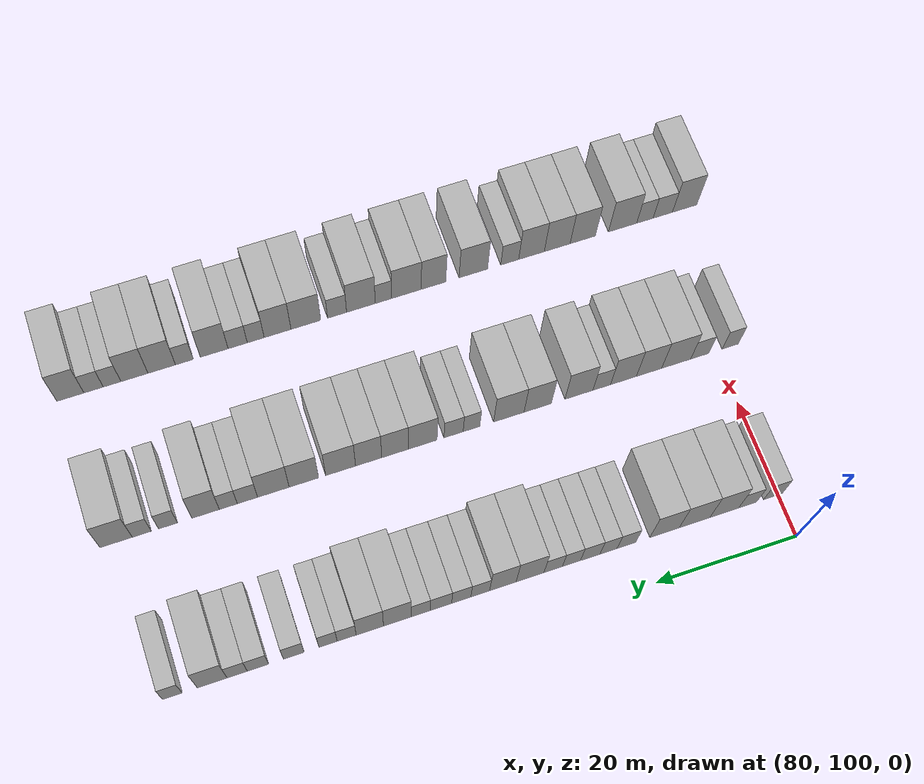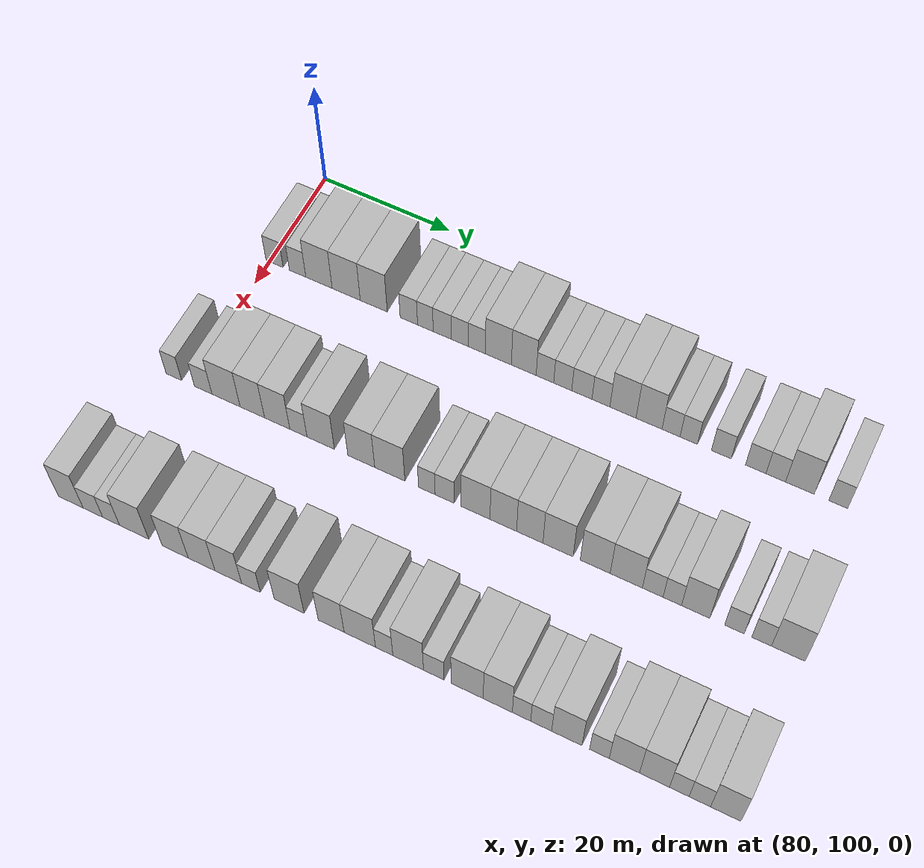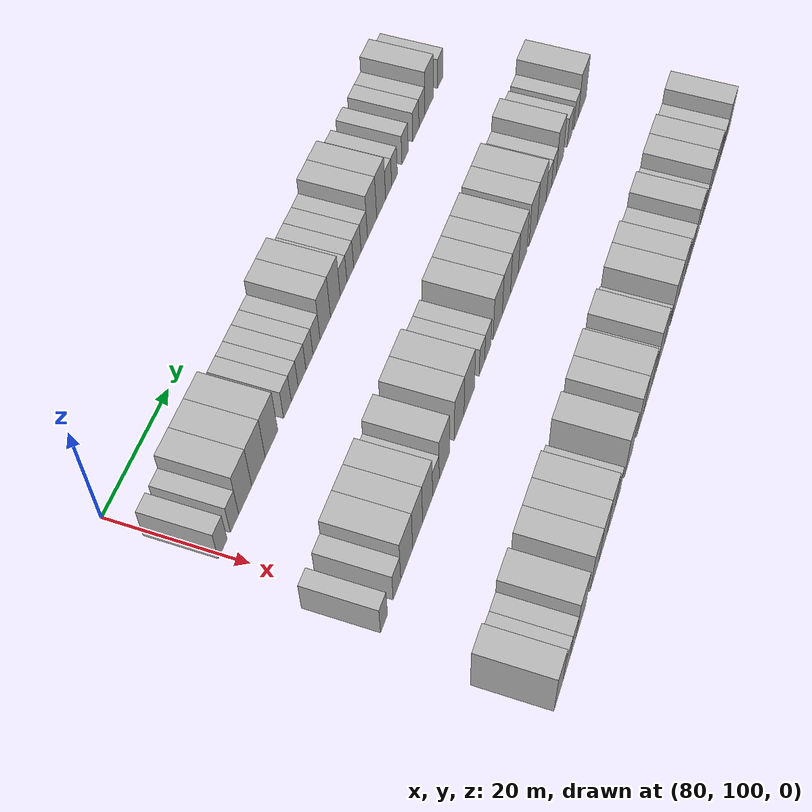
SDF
<sdf version="1.6">
 <world name="default">
  <model name="building_708">
   <static>1</static>
   <pose>91.0000 100.7744 0 0.000000 0.000000 0.000000</pose>
   <link name="link">
    <pose>0 0 3.00 0 0 0</pose>
    <collision name="collision"><geometry><box><size>10.0000 2.7549 6.0000</size></box></geometry></collision>
    <visual name="visual">
     <cast_shadows>0</cast_shadows>
     <geometry><box><size>10.0000 2.7549 6.0000</size></box></geometry>
     <material>
      <script>
       <uri>model://HANNAS_wall/materials/scripts</uri>
       <uri>model://HANNAS_wall/materials/textures</uri>
       <name>vrc/HANNAS_wall</name>
      </script>
     </material>
    </visual>
   </link>
  </model>
  <model name="building_709">
   <static>1</static>
   <pose>91.0000 104.4603 0 0.000000 0.000000 0.000000</pose>
   <link name="link">
    <pose>0 0 3.00 0 0 0</pose>
    <collision name="collision"><geometry><box><size>10.0000 2.6169 6.0000</size></box></geometry></collision>
    <visual name="visual">
     <cast_shadows>0</cast_shadows>
     <geometry><box><size>10.0000 2.6169 6.0000</size></box></geometry>
     <material>
      <script>
       <uri>model://HANNAS_wall/materials/scripts</uri>
       <uri>model://HANNAS_wall/materials/textures</uri>
       <name>vrc/HANNAS_wall</name>
      </script>
     </material>
    </visual>
   </link>
  </model>
  <model name="building_710">
   <static>1</static>
   <pose>91.0000 107.8591 0 0.000000 0.000000 0.000000</pose>
   <link name="link">
    <pose>0 0 4.50 0 0 0</pose>
    <collision name="collision"><geometry><box><size>10.0000 4.1806 9.0000</size></box></geometry></collision>
    <visual name="visual">
     <cast_shadows>0</cast_shadows>
     <geometry><box><size>10.0000 4.1806 9.0000</size></box></geometry>
     <material>
      <script>
       <uri>model://HANNAS_wall/materials/scripts</uri>
       <uri>model://HANNAS_wall/materials/textures</uri>
       <name>vrc/HANNAS_wall</name>
      </script>
     </material>
    </visual>
   </link>
  </model>
  <model name="building_711">
   <static>1</static>
   <pose>91.0000 112.1567 0 0.000000 0.000000 0.000000</pose>
   <link name="link">
    <pose>0 0 4.50 0 0 0</pose>
    <collision name="collision"><geometry><box><size>10.0000 4.4147 9.0000</size></box></geometry></collision>
    <visual name="visual">
     <cast_shadows>0</cast_shadows>
     <geometry><box><size>10.0000 4.4147 9.0000</size></box></geometry>
     <material>
      <script>
       <uri>model://HANNAS_wall/materials/scripts</uri>
       <uri>model://HANNAS_wall/materials/textures</uri>
       <name>vrc/HANNAS_wall</name>
      </script>
     </material>
    </visual>
   </link>
  </model>
  <model name="building_712">
   <static>1</static>
   <pose>91.0000 116.4764 0 0.000000 0.000000 0.000000</pose>
   <link name="link">
    <pose>0 0 4.50 0 0 0</pose>
    <collision name="collision"><geometry><box><size>10.0000 4.2247 9.0000</size></box></geometry></collision>
    <visual name="visual">
     <cast_shadows>0</cast_shadows>
     <geometry><box><size>10.0000 4.2247 9.0000</size></box></geometry>
     <material>
      <script>
       <uri>model://HANNAS_wall/materials/scripts</uri>
       <uri>model://HANNAS_wall/materials/textures</uri>
       <name>vrc/HANNAS_wall</name>
      </script>
     </material>
    </visual>
   </link>
  </model>
  <model name="building_713">
   <static>1</static>
   <pose>91.0000 121.9339 0 0.000000 0.000000 0.000000</pose>
   <link name="link">
    <pose>0 0 3.00 0 0 0</pose>
    <collision name="collision"><geometry><box><size>10.0000 2.6903 6.0000</size></box></geometry></collision>
    <visual name="visual">
     <cast_shadows>0</cast_shadows>
     <geometry><box><size>10.0000 2.6903 6.0000</size></box></geometry>
     <material>
      <script>
       <uri>model://HANNAS_wall/materials/scripts</uri>
       <uri>model://HANNAS_wall/materials/textures</uri>
       <name>vrc/HANNAS_wall</name>
      </script>
     </material>
    </visual>
   </link>
  </model>
  <model name="building_714">
   <static>1</static>
   <pose>91.0000 124.4852 0 0.000000 0.000000 0.000000</pose>
   <link name="link">
    <pose>0 0 3.00 0 0 0</pose>
    <collision name="collision"><geometry><box><size>10.0000 2.4123 6.0000</size></box></geometry></collision>
    <visual name="visual">
     <cast_shadows>0</cast_shadows>
     <geometry><box><size>10.0000 2.4123 6.0000</size></box></geometry>
     <material>
      <script>
       <uri>model://HANNAS_wall/materials/scripts</uri>
       <uri>model://HANNAS_wall/materials/textures</uri>
       <name>vrc/HANNAS_wall</name>
      </script>
     </material>
    </visual>
   </link>
  </model>
  <model name="building_715">
   <static>1</static>
   <pose>91.0000 127.0822 0 0.000000 0.000000 0.000000</pose>
   <link name="link">
    <pose>0 0 3.00 0 0 0</pose>
    <collision name="collision"><geometry><box><size>10.0000 2.7817 6.0000</size></box></geometry></collision>
    <visual name="visual">
     <cast_shadows>0</cast_shadows>
     <geometry><box><size>10.0000 2.7817 6.0000</size></box></geometry>
     <material>
      <script>
       <uri>model://HANNAS_wall/materials/scripts</uri>
       <uri>model://HANNAS_wall/materials/textures</uri>
       <name>vrc/HANNAS_wall</name>
      </script>
     </material>
    </visual>
   </link>
  </model>
  <model name="building_716">
   <static>1</static>
   <pose>91.0000 129.7489 0 0.000000 0.000000 0.000000</pose>
   <link name="link">
    <pose>0 0 3.00 0 0 0</pose>
    <collision name="collision"><geometry><box><size>10.0000 2.5518 6.0000</size></box></geometry></collision>
    <visual name="visual">
     <cast_shadows>0</cast_shadows>
     <geometry><box><size>10.0000 2.5518 6.0000</size></box></geometry>
     <material>
      <script>
       <uri>model://HANNAS_wall/materials/scripts</uri>
       <uri>model://HANNAS_wall/materials/textures</uri>
       <name>vrc/HANNAS_wall</name>
      </script>
     </material>
    </visual>
   </link>
  </model>
  <model name="building_717">
   <static>1</static>
   <pose>91.0000 132.3276 0 0.000000 0.000000 0.000000</pose>
   <link name="link">
    <pose>0 0 3.00 0 0 0</pose>
    <collision name="collision"><geometry><box><size>10.0000 2.6054 6.0000</size></box></geometry></collision>
    <visual name="visual">
     <cast_shadows>0</cast_shadows>
     <geometry><box><size>10.0000 2.6054 6.0000</size></box></geometry>
     <material>
      <script>
       <uri>model://HANNAS_wall/materials/scripts</uri>
       <uri>model://HANNAS_wall/materials/textures</uri>
       <name>vrc/HANNAS_wall</name>
      </script>
     </material>
    </visual>
   </link>
  </model>
  <model name="building_718">
   <static>1</static>
   <pose>91.0000 135.5892 0 0.000000 0.000000 0.000000</pose>
   <link name="link">
    <pose>0 0 4.50 0 0 0</pose>
    <collision name="collision"><geometry><box><size>10.0000 3.9180 9.0000</size></box></geometry></collision>
    <visual name="visual">
     <cast_shadows>0</cast_shadows>
     <geometry><box><size>10.0000 3.9180 9.0000</size></box></geometry>
     <material>
      <script>
       <uri>model://HANNAS_wall/materials/scripts</uri>
       <uri>model://HANNAS_wall/materials/textures</uri>
       <name>vrc/HANNAS_wall</name>
      </script>
     </material>
    </visual>
   </link>
  </model>
  <model name="building_719">
   <static>1</static>
   <pose>91.0000 139.4048 0 0.000000 0.000000 0.000000</pose>
   <link name="link">
    <pose>0 0 4.50 0 0 0</pose>
    <collision name="collision"><geometry><box><size>10.0000 3.7133 9.0000</size></box></geometry></collision>
    <visual name="visual">
     <cast_shadows>0</cast_shadows>
     <geometry><box><size>10.0000 3.7133 9.0000</size></box></geometry>
     <material>
      <script>
       <uri>model://HANNAS_wall/materials/scripts</uri>
       <uri>model://HANNAS_wall/materials/textures</uri>
       <name>vrc/HANNAS_wall</name>
      </script>
     </material>
    </visual>
   </link>
  </model>
  <model name="building_720">
   <static>1</static>
   <pose>91.0000 142.5632 0 0.000000 0.000000 0.000000</pose>
   <link name="link">
    <pose>0 0 3.00 0 0 0</pose>
    <collision name="collision"><geometry><box><size>10.0000 2.6034 6.0000</size></box></geometry></collision>
    <visual name="visual">
     <cast_shadows>0</cast_shadows>
     <geometry><box><size>10.0000 2.6034 6.0000</size></box></geometry>
     <material>
      <script>
       <uri>model://HANNAS_wall/materials/scripts</uri>
       <uri>model://HANNAS_wall/materials/textures</uri>
       <name>vrc/HANNAS_wall</name>
      </script>
     </material>
    </visual>
   </link>
  </model>
  <model name="building_721">
   <static>1</static>
   <pose>91.0000 145.2041 0 0.000000 0.000000 0.000000</pose>
   <link name="link">
    <pose>0 0 3.00 0 0 0</pose>
    <collision name="collision"><geometry><box><size>10.0000 2.6784 6.0000</size></box></geometry></collision>
    <visual name="visual">
     <cast_shadows>0</cast_shadows>
     <geometry><box><size>10.0000 2.6784 6.0000</size></box></geometry>
     <material>
      <script>
       <uri>model://HANNAS_wall/materials/scripts</uri>
       <uri>model://HANNAS_wall/materials/textures</uri>
       <name>vrc/HANNAS_wall</name>
      </script>
     </material>
    </visual>
   </link>
  </model>
  <model name="building_722">
   <static>1</static>
   <pose>91.0000 148.0314 0 0.000000 0.000000 0.000000</pose>
   <link name="link">
    <pose>0 0 3.00 0 0 0</pose>
    <collision name="collision"><geometry><box><size>10.0000 2.9761 6.0000</size></box></geometry></collision>
    <visual name="visual">
     <cast_shadows>0</cast_shadows>
     <geometry><box><size>10.0000 2.9761 6.0000</size></box></geometry>
     <material>
      <script>
       <uri>model://HANNAS_wall/materials/scripts</uri>
       <uri>model://HANNAS_wall/materials/textures</uri>
       <name>vrc/HANNAS_wall</name>
      </script>
     </material>
    </visual>
   </link>
  </model>
  <model name="building_723">
   <static>1</static>
   <pose>91.0000 150.8288 0 0.000000 0.000000 0.000000</pose>
   <link name="link">
    <pose>0 0 3.00 0 0 0</pose>
    <collision name="collision"><geometry><box><size>10.0000 2.6188 6.0000</size></box></geometry></collision>
    <visual name="visual">
     <cast_shadows>0</cast_shadows>
     <geometry><box><size>10.0000 2.6188 6.0000</size></box></geometry>
     <material>
      <script>
       <uri>model://HANNAS_wall/materials/scripts</uri>
       <uri>model://HANNAS_wall/materials/textures</uri>
       <name>vrc/HANNAS_wall</name>
      </script>
     </material>
    </visual>
   </link>
  </model>
  <model name="building_724">
   <static>1</static>
   <pose>91.0000 154.0405 0 0.000000 0.000000 0.000000</pose>
   <link name="link">
    <pose>0 0 4.50 0 0 0</pose>
    <collision name="collision"><geometry><box><size>10.0000 3.8044 9.0000</size></box></geometry></collision>
    <visual name="visual">
     <cast_shadows>0</cast_shadows>
     <geometry><box><size>10.0000 3.8044 9.0000</size></box></geometry>
     <material>
      <script>
       <uri>model://HANNAS_wall/materials/scripts</uri>
       <uri>model://HANNAS_wall/materials/textures</uri>
       <name>vrc/HANNAS_wall</name>
      </script>
     </material>
    </visual>
   </link>
  </model>
  <model name="building_725">
   <static>1</static>
   <pose>91.0000 157.8180 0 0.000000 0.000000 0.000000</pose>
   <link name="link">
    <pose>0 0 4.50 0 0 0</pose>
    <collision name="collision"><geometry><box><size>10.0000 3.7508 9.0000</size></box></geometry></collision>
    <visual name="visual">
     <cast_shadows>0</cast_shadows>
     <geometry><box><size>10.0000 3.7508 9.0000</size></box></geometry>
     <material>
      <script>
       <uri>model://HANNAS_wall/materials/scripts</uri>
       <uri>model://HANNAS_wall/materials/textures</uri>
       <name>vrc/HANNAS_wall</name>
      </script>
     </material>
    </visual>
   </link>
  </model>
  <model name="building_726">
   <static>1</static>
   <pose>91.0000 160.9858 0 0.000000 0.000000 0.000000</pose>
   <link name="link">
    <pose>0 0 3.00 0 0 0</pose>
    <collision name="collision"><geometry><box><size>10.0000 2.5847 6.0000</size></box></geometry></collision>
    <visual name="visual">
     <cast_shadows>0</cast_shadows>
     <geometry><box><size>10.0000 2.5847 6.0000</size></box></geometry>
     <material>
      <script>
       <uri>model://HANNAS_wall/materials/scripts</uri>
       <uri>model://HANNAS_wall/materials/textures</uri>
       <name>vrc/HANNAS_wall</name>
      </script>
     </material>
    </visual>
   </link>
  </model>
  <model name="building_727">
   <static>1</static>
   <pose>91.0000 163.5223 0 0.000000 0.000000 0.000000</pose>
   <link name="link">
    <pose>0 0 3.00 0 0 0</pose>
    <collision name="collision"><geometry><box><size>10.0000 2.4884 6.0000</size></box></geometry></collision>
    <visual name="visual">
     <cast_shadows>0</cast_shadows>
     <geometry><box><size>10.0000 2.4884 6.0000</size></box></geometry>
     <material>
      <script>
       <uri>model://HANNAS_wall/materials/scripts</uri>
       <uri>model://HANNAS_wall/materials/textures</uri>
       <name>vrc/HANNAS_wall</name>
      </script>
     </material>
    </visual>
   </link>
  </model>
  <model name="building_728">
   <static>1</static>
   <pose>91.0000 168.1719 0 0.000000 0.000000 0.000000</pose>
   <link name="link">
    <pose>0 0 3.00 0 0 0</pose>
    <collision name="collision"><geometry><box><size>10.0000 2.8108 6.0000</size></box></geometry></collision>
    <visual name="visual">
     <cast_shadows>0</cast_shadows>
     <geometry><box><size>10.0000 2.8108 6.0000</size></box></geometry>
     <material>
      <script>
       <uri>model://HANNAS_wall/materials/scripts</uri>
       <uri>model://HANNAS_wall/materials/textures</uri>
       <name>vrc/HANNAS_wall</name>
      </script>
     </material>
    </visual>
   </link>
  </model>
  <model name="building_729">
   <static>1</static>
   <pose>91.0000 173.0109 0 0.000000 0.000000 0.000000</pose>
   <link name="link">
    <pose>0 0 3.00 0 0 0</pose>
    <collision name="collision"><geometry><box><size>10.0000 2.8673 6.0000</size></box></geometry></collision>
    <visual name="visual">
     <cast_shadows>0</cast_shadows>
     <geometry><box><size>10.0000 2.8673 6.0000</size></box></geometry>
     <material>
      <script>
       <uri>model://HANNAS_wall/materials/scripts</uri>
       <uri>model://HANNAS_wall/materials/textures</uri>
       <name>vrc/HANNAS_wall</name>
      </script>
     </material>
    </visual>
   </link>
  </model>
  <model name="building_730">
   <static>1</static>
   <pose>91.0000 175.8087 0 0.000000 0.000000 0.000000</pose>
   <link name="link">
    <pose>0 0 3.00 0 0 0</pose>
    <collision name="collision"><geometry><box><size>10.0000 2.7283 6.0000</size></box></geometry></collision>
    <visual name="visual">
     <cast_shadows>0</cast_shadows>
     <geometry><box><size>10.0000 2.7283 6.0000</size></box></geometry>
     <material>
      <script>
       <uri>model://HANNAS_wall/materials/scripts</uri>
       <uri>model://HANNAS_wall/materials/textures</uri>
       <name>vrc/HANNAS_wall</name>
      </script>
     </material>
    </visual>
   </link>
  </model>
  <model name="building_731">
   <static>1</static>
   <pose>91.0000 179.1634 0 0.000000 0.000000 0.000000</pose>
   <link name="link">
    <pose>0 0 4.50 0 0 0</pose>
    <collision name="collision"><geometry><box><size>10.0000 3.9811 9.0000</size></box></geometry></collision>
    <visual name="visual">
     <cast_shadows>0</cast_shadows>
     <geometry><box><size>10.0000 3.9811 9.0000</size></box></geometry>
     <material>
      <script>
       <uri>model://HANNAS_wall/materials/scripts</uri>
       <uri>model://HANNAS_wall/materials/textures</uri>
       <name>vrc/HANNAS_wall</name>
      </script>
     </material>
    </visual>
   </link>
  </model>
  <model name="building_732">
   <static>1</static>
   <pose>91.0000 184.4555 0 0.000000 0.000000 0.000000</pose>
   <link name="link">
    <pose>0 0 3.00 0 0 0</pose>
    <collision name="collision"><geometry><box><size>10.0000 2.6030 6.0000</size></box></geometry></collision>
    <visual name="visual">
     <cast_shadows>0</cast_shadows>
     <geometry><box><size>10.0000 2.6030 6.0000</size></box></geometry>
     <material>
      <script>
       <uri>model://HANNAS_wall/materials/scripts</uri>
       <uri>model://HANNAS_wall/materials/textures</uri>
       <name>vrc/HANNAS_wall</name>
      </script>
     </material>
    </visual>
   </link>
  </model>
  <model name="building_912">
   <static>1</static>
   <pose>113.0000 97.7588 0 0.000000 0.000000 0.000000</pose>
   <link name="link">
    <pose>0 0 3.00 0 0 0</pose>
    <collision name="collision"><geometry><box><size>10.0000 2.4433 6.0000</size></box></geometry></collision>
    <visual name="visual">
     <cast_shadows>0</cast_shadows>
     <geometry><box><size>10.0000 2.4433 6.0000</size></box></geometry>
     <material>
      <script>
       <uri>model://HANNAS_wall/materials/scripts</uri>
       <uri>model://HANNAS_wall/materials/textures</uri>
       <name>vrc/HANNAS_wall</name>
      </script>
     </material>
    </visual>
   </link>
  </model>
  <model name="building_913">
   <static>1</static>
   <pose>113.0000 102.3407 0 0.000000 0.000000 0.000000</pose>
   <link name="link">
    <pose>0 0 3.00 0 0 0</pose>
    <collision name="collision"><geometry><box><size>10.0000 2.7206 6.0000</size></box></geometry></collision>
    <visual name="visual">
     <cast_shadows>0</cast_shadows>
     <geometry><box><size>10.0000 2.7206 6.0000</size></box></geometry>
     <material>
      <script>
       <uri>model://HANNAS_wall/materials/scripts</uri>
       <uri>model://HANNAS_wall/materials/textures</uri>
       <name>vrc/HANNAS_wall</name>
      </script>
     </material>
    </visual>
   </link>
  </model>
  <model name="building_914">
   <static>1</static>
   <pose>113.0000 105.8822 0 0.000000 0.000000 0.000000</pose>
   <link name="link">
    <pose>0 0 4.50 0 0 0</pose>
    <collision name="collision"><geometry><box><size>10.0000 4.3622 9.0000</size></box></geometry></collision>
    <visual name="visual">
     <cast_shadows>0</cast_shadows>
     <geometry><box><size>10.0000 4.3622 9.0000</size></box></geometry>
     <material>
      <script>
       <uri>model://HANNAS_wall/materials/scripts</uri>
       <uri>model://HANNAS_wall/materials/textures</uri>
       <name>vrc/HANNAS_wall</name>
      </script>
     </material>
    </visual>
   </link>
  </model>
  <model name="building_915">
   <static>1</static>
   <pose>113.0000 109.9407 0 0.000000 0.000000 0.000000</pose>
   <link name="link">
    <pose>0 0 4.50 0 0 0</pose>
    <collision name="collision"><geometry><box><size>10.0000 3.7550 9.0000</size></box></geometry></collision>
    <visual name="visual">
     <cast_shadows>0</cast_shadows>
     <geometry><box><size>10.0000 3.7550 9.0000</size></box></geometry>
     <material>
      <script>
       <uri>model://HANNAS_wall/materials/scripts</uri>
       <uri>model://HANNAS_wall/materials/textures</uri>
       <name>vrc/HANNAS_wall</name>
      </script>
     </material>
    </visual>
   </link>
  </model>
  <model name="building_916">
   <static>1</static>
   <pose>113.0000 113.7398 0 0.000000 0.000000 0.000000</pose>
   <link name="link">
    <pose>0 0 4.50 0 0 0</pose>
    <collision name="collision"><geometry><box><size>10.0000 3.8431 9.0000</size></box></geometry></collision>
    <visual name="visual">
     <cast_shadows>0</cast_shadows>
     <geometry><box><size>10.0000 3.8431 9.0000</size></box></geometry>
     <material>
      <script>
       <uri>model://HANNAS_wall/materials/scripts</uri>
       <uri>model://HANNAS_wall/materials/textures</uri>
       <name>vrc/HANNAS_wall</name>
      </script>
     </material>
    </visual>
   </link>
  </model>
  <model name="building_917">
   <static>1</static>
   <pose>113.0000 116.9620 0 0.000000 0.000000 0.000000</pose>
   <link name="link">
    <pose>0 0 3.00 0 0 0</pose>
    <collision name="collision"><geometry><box><size>10.0000 2.6013 6.0000</size></box></geometry></collision>
    <visual name="visual">
     <cast_shadows>0</cast_shadows>
     <geometry><box><size>10.0000 2.6013 6.0000</size></box></geometry>
     <material>
      <script>
       <uri>model://HANNAS_wall/materials/scripts</uri>
       <uri>model://HANNAS_wall/materials/textures</uri>
       <name>vrc/HANNAS_wall</name>
      </script>
     </material>
    </visual>
   </link>
  </model>
  <model name="building_918">
   <static>1</static>
   <pose>113.0000 120.3221 0 0.000000 0.000000 0.000000</pose>
   <link name="link">
    <pose>0 0 4.50 0 0 0</pose>
    <collision name="collision"><geometry><box><size>10.0000 4.1190 9.0000</size></box></geometry></collision>
    <visual name="visual">
     <cast_shadows>0</cast_shadows>
     <geometry><box><size>10.0000 4.1190 9.0000</size></box></geometry>
     <material>
      <script>
       <uri>model://HANNAS_wall/materials/scripts</uri>
       <uri>model://HANNAS_wall/materials/textures</uri>
       <name>vrc/HANNAS_wall</name>
      </script>
     </material>
    </visual>
   </link>
  </model>
  <model name="building_919">
   <static>1</static>
   <pose>113.0000 126.3804 0 0.000000 0.000000 0.000000</pose>
   <link name="link">
    <pose>0 0 4.50 0 0 0</pose>
    <collision name="collision"><geometry><box><size>10.0000 3.9975 9.0000</size></box></geometry></collision>
    <visual name="visual">
     <cast_shadows>0</cast_shadows>
     <geometry><box><size>10.0000 3.9975 9.0000</size></box></geometry>
     <material>
      <script>
       <uri>model://HANNAS_wall/materials/scripts</uri>
       <uri>model://HANNAS_wall/materials/textures</uri>
       <name>vrc/HANNAS_wall</name>
      </script>
     </material>
    </visual>
   </link>
  </model>
  <model name="building_920">
   <static>1</static>
   <pose>113.0000 130.6053 0 0.000000 0.000000 0.000000</pose>
   <link name="link">
    <pose>0 0 4.50 0 0 0</pose>
    <collision name="collision"><geometry><box><size>10.0000 4.4525 9.0000</size></box></geometry></collision>
    <visual name="visual">
     <cast_shadows>0</cast_shadows>
     <geometry><box><size>10.0000 4.4525 9.0000</size></box></geometry>
     <material>
      <script>
       <uri>model://HANNAS_wall/materials/scripts</uri>
       <uri>model://HANNAS_wall/materials/textures</uri>
       <name>vrc/HANNAS_wall</name>
      </script>
     </material>
    </visual>
   </link>
  </model>
  <model name="building_921">
   <static>1</static>
   <pose>113.0000 136.0406 0 0.000000 0.000000 0.000000</pose>
   <link name="link">
    <pose>0 0 3.00 0 0 0</pose>
    <collision name="collision"><geometry><box><size>10.0000 2.4181 6.0000</size></box></geometry></collision>
    <visual name="visual">
     <cast_shadows>0</cast_shadows>
     <geometry><box><size>10.0000 2.4181 6.0000</size></box></geometry>
     <material>
      <script>
       <uri>model://HANNAS_wall/materials/scripts</uri>
       <uri>model://HANNAS_wall/materials/textures</uri>
       <name>vrc/HANNAS_wall</name>
      </script>
     </material>
    </visual>
   </link>
  </model>
  <model name="building_922">
   <static>1</static>
   <pose>113.0000 138.6345 0 0.000000 0.000000 0.000000</pose>
   <link name="link">
    <pose>0 0 3.00 0 0 0</pose>
    <collision name="collision"><geometry><box><size>10.0000 2.7697 6.0000</size></box></geometry></collision>
    <visual name="visual">
     <cast_shadows>0</cast_shadows>
     <geometry><box><size>10.0000 2.7697 6.0000</size></box></geometry>
     <material>
      <script>
       <uri>model://HANNAS_wall/materials/scripts</uri>
       <uri>model://HANNAS_wall/materials/textures</uri>
       <name>vrc/HANNAS_wall</name>
      </script>
     </material>
    </visual>
   </link>
  </model>
  <model name="building_923">
   <static>1</static>
   <pose>113.0000 143.0917 0 0.000000 0.000000 0.000000</pose>
   <link name="link">
    <pose>0 0 4.50 0 0 0</pose>
    <collision name="collision"><geometry><box><size>10.0000 4.1447 9.0000</size></box></geometry></collision>
    <visual name="visual">
     <cast_shadows>0</cast_shadows>
     <geometry><box><size>10.0000 4.1447 9.0000</size></box></geometry>
     <material>
      <script>
       <uri>model://HANNAS_wall/materials/scripts</uri>
       <uri>model://HANNAS_wall/materials/textures</uri>
       <name>vrc/HANNAS_wall</name>
      </script>
     </material>
    </visual>
   </link>
  </model>
  <model name="building_924">
   <static>1</static>
   <pose>113.0000 147.0598 0 0.000000 0.000000 0.000000</pose>
   <link name="link">
    <pose>0 0 4.50 0 0 0</pose>
    <collision name="collision"><geometry><box><size>10.0000 3.7915 9.0000</size></box></geometry></collision>
    <visual name="visual">
     <cast_shadows>0</cast_shadows>
     <geometry><box><size>10.0000 3.7915 9.0000</size></box></geometry>
     <material>
      <script>
       <uri>model://HANNAS_wall/materials/scripts</uri>
       <uri>model://HANNAS_wall/materials/textures</uri>
       <name>vrc/HANNAS_wall</name>
      </script>
     </material>
    </visual>
   </link>
  </model>
  <model name="building_925">
   <static>1</static>
   <pose>113.0000 150.8192 0 0.000000 0.000000 0.000000</pose>
   <link name="link">
    <pose>0 0 4.50 0 0 0</pose>
    <collision name="collision"><geometry><box><size>10.0000 3.7274 9.0000</size></box></geometry></collision>
    <visual name="visual">
     <cast_shadows>0</cast_shadows>
     <geometry><box><size>10.0000 3.7274 9.0000</size></box></geometry>
     <material>
      <script>
       <uri>model://HANNAS_wall/materials/scripts</uri>
       <uri>model://HANNAS_wall/materials/textures</uri>
       <name>vrc/HANNAS_wall</name>
      </script>
     </material>
    </visual>
   </link>
  </model>
  <model name="building_926">
   <static>1</static>
   <pose>113.0000 154.8061 0 0.000000 0.000000 0.000000</pose>
   <link name="link">
    <pose>0 0 4.50 0 0 0</pose>
    <collision name="collision"><geometry><box><size>10.0000 4.2464 9.0000</size></box></geometry></collision>
    <visual name="visual">
     <cast_shadows>0</cast_shadows>
     <geometry><box><size>10.0000 4.2464 9.0000</size></box></geometry>
     <material>
      <script>
       <uri>model://HANNAS_wall/materials/scripts</uri>
       <uri>model://HANNAS_wall/materials/textures</uri>
       <name>vrc/HANNAS_wall</name>
      </script>
     </material>
    </visual>
   </link>
  </model>
  <model name="building_927">
   <static>1</static>
   <pose>113.0000 160.0077 0 0.000000 0.000000 0.000000</pose>
   <link name="link">
    <pose>0 0 4.50 0 0 0</pose>
    <collision name="collision"><geometry><box><size>10.0000 4.1567 9.0000</size></box></geometry></collision>
    <visual name="visual">
     <cast_shadows>0</cast_shadows>
     <geometry><box><size>10.0000 4.1567 9.0000</size></box></geometry>
     <material>
      <script>
       <uri>model://HANNAS_wall/materials/scripts</uri>
       <uri>model://HANNAS_wall/materials/textures</uri>
       <name>vrc/HANNAS_wall</name>
      </script>
     </material>
    </visual>
   </link>
  </model>
  <model name="building_928">
   <static>1</static>
   <pose>113.0000 164.3070 0 0.000000 0.000000 0.000000</pose>
   <link name="link">
    <pose>0 0 4.50 0 0 0</pose>
    <collision name="collision"><geometry><box><size>10.0000 4.4419 9.0000</size></box></geometry></collision>
    <visual name="visual">
     <cast_shadows>0</cast_shadows>
     <geometry><box><size>10.0000 4.4419 9.0000</size></box></geometry>
     <material>
      <script>
       <uri>model://HANNAS_wall/materials/scripts</uri>
       <uri>model://HANNAS_wall/materials/textures</uri>
       <name>vrc/HANNAS_wall</name>
      </script>
     </material>
    </visual>
   </link>
  </model>
  <model name="building_929">
   <static>1</static>
   <pose>113.0000 167.9428 0 0.000000 0.000000 0.000000</pose>
   <link name="link">
    <pose>0 0 3.00 0 0 0</pose>
    <collision name="collision"><geometry><box><size>10.0000 2.8299 6.0000</size></box></geometry></collision>
    <visual name="visual">
     <cast_shadows>0</cast_shadows>
     <geometry><box><size>10.0000 2.8299 6.0000</size></box></geometry>
     <material>
      <script>
       <uri>model://HANNAS_wall/materials/scripts</uri>
       <uri>model://HANNAS_wall/materials/textures</uri>
       <name>vrc/HANNAS_wall</name>
      </script>
     </material>
    </visual>
   </link>
  </model>
  <model name="building_930">
   <static>1</static>
   <pose>113.0000 170.6130 0 0.000000 0.000000 0.000000</pose>
   <link name="link">
    <pose>0 0 3.00 0 0 0</pose>
    <collision name="collision"><geometry><box><size>10.0000 2.5104 6.0000</size></box></geometry></collision>
    <visual name="visual">
     <cast_shadows>0</cast_shadows>
     <geometry><box><size>10.0000 2.5104 6.0000</size></box></geometry>
     <material>
      <script>
       <uri>model://HANNAS_wall/materials/scripts</uri>
       <uri>model://HANNAS_wall/materials/textures</uri>
       <name>vrc/HANNAS_wall</name>
      </script>
     </material>
    </visual>
   </link>
  </model>
  <model name="building_931">
   <static>1</static>
   <pose>113.0000 173.7769 0 0.000000 0.000000 0.000000</pose>
   <link name="link">
    <pose>0 0 4.50 0 0 0</pose>
    <collision name="collision"><geometry><box><size>10.0000 3.8173 9.0000</size></box></geometry></collision>
    <visual name="visual">
     <cast_shadows>0</cast_shadows>
     <geometry><box><size>10.0000 3.8173 9.0000</size></box></geometry>
     <material>
      <script>
       <uri>model://HANNAS_wall/materials/scripts</uri>
       <uri>model://HANNAS_wall/materials/textures</uri>
       <name>vrc/HANNAS_wall</name>
      </script>
     </material>
    </visual>
   </link>
  </model>
  <model name="building_932">
   <static>1</static>
   <pose>113.0000 178.9978 0 0.000000 0.000000 0.000000</pose>
   <link name="link">
    <pose>0 0 3.00 0 0 0</pose>
    <collision name="collision"><geometry><box><size>10.0000 2.6246 6.0000</size></box></geometry></collision>
    <visual name="visual">
     <cast_shadows>0</cast_shadows>
     <geometry><box><size>10.0000 2.6246 6.0000</size></box></geometry>
     <material>
      <script>
       <uri>model://HANNAS_wall/materials/scripts</uri>
       <uri>model://HANNAS_wall/materials/textures</uri>
       <name>vrc/HANNAS_wall</name>
      </script>
     </material>
    </visual>
   </link>
  </model>
  <model name="building_933">
   <static>1</static>
   <pose>113.0000 182.6203 0 0.000000 0.000000 0.000000</pose>
   <link name="link">
    <pose>0 0 3.00 0 0 0</pose>
    <collision name="collision"><geometry><box><size>10.0000 2.6204 6.0000</size></box></geometry></collision>
    <visual name="visual">
     <cast_shadows>0</cast_shadows>
     <geometry><box><size>10.0000 2.6204 6.0000</size></box></geometry>
     <material>
      <script>
       <uri>model://HANNAS_wall/materials/scripts</uri>
       <uri>model://HANNAS_wall/materials/textures</uri>
       <name>vrc/HANNAS_wall</name>
      </script>
     </material>
    </visual>
   </link>
  </model>
  <model name="building_934">
   <static>1</static>
   <pose>113.0000 186.1459 0 0.000000 0.000000 0.000000</pose>
   <link name="link">
    <pose>0 0 4.50 0 0 0</pose>
    <collision name="collision"><geometry><box><size>10.0000 4.4308 9.0000</size></box></geometry></collision>
    <visual name="visual">
     <cast_shadows>0</cast_shadows>
     <geometry><box><size>10.0000 4.4308 9.0000</size></box></geometry>
     <material>
      <script>
       <uri>model://HANNAS_wall/materials/scripts</uri>
       <uri>model://HANNAS_wall/materials/textures</uri>
       <name>vrc/HANNAS_wall</name>
      </script>
     </material>
    </visual>
   </link>
  </model>
  <model name="building_1100">
   <static>1</static>
   <pose>135.0000 95.6349 0 0.000000 0.000000 0.000000</pose>
   <link name="link">
    <pose>0 0 4.50 0 0 0</pose>
    <collision name="collision"><geometry><box><size>10.0000 3.7923 9.0000</size></box></geometry></collision>
    <visual name="visual">
     <cast_shadows>0</cast_shadows>
     <geometry><box><size>10.0000 3.7923 9.0000</size></box></geometry>
     <material>
      <script>
       <uri>model://HANNAS_wall/materials/scripts</uri>
       <uri>model://HANNAS_wall/materials/textures</uri>
       <name>vrc/HANNAS_wall</name>
      </script>
     </material>
    </visual>
   </link>
  </model>
  <model name="building_1101">
   <static>1</static>
   <pose>135.0000 99.0223 0 0.000000 0.000000 0.000000</pose>
   <link name="link">
    <pose>0 0 3.00 0 0 0</pose>
    <collision name="collision"><geometry><box><size>10.0000 2.9825 6.0000</size></box></geometry></collision>
    <visual name="visual">
     <cast_shadows>0</cast_shadows>
     <geometry><box><size>10.0000 2.9825 6.0000</size></box></geometry>
     <material>
      <script>
       <uri>model://HANNAS_wall/materials/scripts</uri>
       <uri>model://HANNAS_wall/materials/textures</uri>
       <name>vrc/HANNAS_wall</name>
      </script>
     </material>
    </visual>
   </link>
  </model>
  <model name="building_1102">
   <static>1</static>
   <pose>135.0000 101.7882 0 0.000000 0.000000 0.000000</pose>
   <link name="link">
    <pose>0 0 3.00 0 0 0</pose>
    <collision name="collision"><geometry><box><size>10.0000 2.5493 6.0000</size></box></geometry></collision>
    <visual name="visual">
     <cast_shadows>0</cast_shadows>
     <geometry><box><size>10.0000 2.5493 6.0000</size></box></geometry>
     <material>
      <script>
       <uri>model://HANNAS_wall/materials/scripts</uri>
       <uri>model://HANNAS_wall/materials/textures</uri>
       <name>vrc/HANNAS_wall</name>
      </script>
     </material>
    </visual>
   </link>
  </model>
  <model name="building_1103">
   <static>1</static>
   <pose>135.0000 105.2493 0 0.000000 0.000000 0.000000</pose>
   <link name="link">
    <pose>0 0 4.50 0 0 0</pose>
    <collision name="collision"><geometry><box><size>10.0000 4.3729 9.0000</size></box></geometry></collision>
    <visual name="visual">
     <cast_shadows>0</cast_shadows>
     <geometry><box><size>10.0000 4.3729 9.0000</size></box></geometry>
     <material>
      <script>
       <uri>model://HANNAS_wall/materials/scripts</uri>
       <uri>model://HANNAS_wall/materials/textures</uri>
       <name>vrc/HANNAS_wall</name>
      </script>
     </material>
    </visual>
   </link>
  </model>
  <model name="building_1104">
   <static>1</static>
   <pose>135.0000 111.3734 0 0.000000 0.000000 0.000000</pose>
   <link name="link">
    <pose>0 0 4.50 0 0 0</pose>
    <collision name="collision"><geometry><box><size>10.0000 3.8752 9.0000</size></box></geometry></collision>
    <visual name="visual">
     <cast_shadows>0</cast_shadows>
     <geometry><box><size>10.0000 3.8752 9.0000</size></box></geometry>
     <material>
      <script>
       <uri>model://HANNAS_wall/materials/scripts</uri>
       <uri>model://HANNAS_wall/materials/textures</uri>
       <name>vrc/HANNAS_wall</name>
      </script>
     </material>
    </visual>
   </link>
  </model>
  <model name="building_1105">
   <static>1</static>
   <pose>135.0000 115.2813 0 0.000000 0.000000 0.000000</pose>
   <link name="link">
    <pose>0 0 4.50 0 0 0</pose>
    <collision name="collision"><geometry><box><size>10.0000 3.9406 9.0000</size></box></geometry></collision>
    <visual name="visual">
     <cast_shadows>0</cast_shadows>
     <geometry><box><size>10.0000 3.9406 9.0000</size></box></geometry>
     <material>
      <script>
       <uri>model://HANNAS_wall/materials/scripts</uri>
       <uri>model://HANNAS_wall/materials/textures</uri>
       <name>vrc/HANNAS_wall</name>
      </script>
     </material>
    </visual>
   </link>
  </model>
  <model name="building_1106">
   <static>1</static>
   <pose>135.0000 119.2007 0 0.000000 0.000000 0.000000</pose>
   <link name="link">
    <pose>0 0 4.50 0 0 0</pose>
    <collision name="collision"><geometry><box><size>10.0000 3.8981 9.0000</size></box></geometry></collision>
    <visual name="visual">
     <cast_shadows>0</cast_shadows>
     <geometry><box><size>10.0000 3.8981 9.0000</size></box></geometry>
     <material>
      <script>
       <uri>model://HANNAS_wall/materials/scripts</uri>
       <uri>model://HANNAS_wall/materials/textures</uri>
       <name>vrc/HANNAS_wall</name>
      </script>
     </material>
    </visual>
   </link>
  </model>
  <model name="building_1107">
   <static>1</static>
   <pose>135.0000 122.5079 0 0.000000 0.000000 0.000000</pose>
   <link name="link">
    <pose>0 0 3.00 0 0 0</pose>
    <collision name="collision"><geometry><box><size>10.0000 2.7163 6.0000</size></box></geometry></collision>
    <visual name="visual">
     <cast_shadows>0</cast_shadows>
     <geometry><box><size>10.0000 2.7163 6.0000</size></box></geometry>
     <material>
      <script>
       <uri>model://HANNAS_wall/materials/scripts</uri>
       <uri>model://HANNAS_wall/materials/textures</uri>
       <name>vrc/HANNAS_wall</name>
      </script>
     </material>
    </visual>
   </link>
  </model>
  <model name="building_1108">
   <static>1</static>
   <pose>135.0000 128.0109 0 0.000000 0.000000 0.000000</pose>
   <link name="link">
    <pose>0 0 4.50 0 0 0</pose>
    <collision name="collision"><geometry><box><size>10.0000 4.2898 9.0000</size></box></geometry></collision>
    <visual name="visual">
     <cast_shadows>0</cast_shadows>
     <geometry><box><size>10.0000 4.2898 9.0000</size></box></geometry>
     <material>
      <script>
       <uri>model://HANNAS_wall/materials/scripts</uri>
       <uri>model://HANNAS_wall/materials/textures</uri>
       <name>vrc/HANNAS_wall</name>
      </script>
     </material>
    </visual>
   </link>
  </model>
  <model name="building_1109">
   <static>1</static>
   <pose>135.0000 133.9966 0 0.000000 0.000000 0.000000</pose>
   <link name="link">
    <pose>0 0 4.50 0 0 0</pose>
    <collision name="collision"><geometry><box><size>10.0000 3.6816 9.0000</size></box></geometry></collision>
    <visual name="visual">
     <cast_shadows>0</cast_shadows>
     <geometry><box><size>10.0000 3.6816 9.0000</size></box></geometry>
     <material>
      <script>
       <uri>model://HANNAS_wall/materials/scripts</uri>
       <uri>model://HANNAS_wall/materials/textures</uri>
       <name>vrc/HANNAS_wall</name>
      </script>
     </material>
    </visual>
   </link>
  </model>
  <model name="building_1110">
   <static>1</static>
   <pose>135.0000 138.0379 0 0.000000 0.000000 0.000000</pose>
   <link name="link">
    <pose>0 0 4.50 0 0 0</pose>
    <collision name="collision"><geometry><box><size>10.0000 4.4009 9.0000</size></box></geometry></collision>
    <visual name="visual">
     <cast_shadows>0</cast_shadows>
     <geometry><box><size>10.0000 4.4009 9.0000</size></box></geometry>
     <material>
      <script>
       <uri>model://HANNAS_wall/materials/scripts</uri>
       <uri>model://HANNAS_wall/materials/textures</uri>
       <name>vrc/HANNAS_wall</name>
      </script>
     </material>
    </visual>
   </link>
  </model>
  <model name="building_1111">
   <static>1</static>
   <pose>135.0000 141.4530 0 0.000000 0.000000 0.000000</pose>
   <link name="link">
    <pose>0 0 3.00 0 0 0</pose>
    <collision name="collision"><geometry><box><size>10.0000 2.4294 6.0000</size></box></geometry></collision>
    <visual name="visual">
     <cast_shadows>0</cast_shadows>
     <geometry><box><size>10.0000 2.4294 6.0000</size></box></geometry>
     <material>
      <script>
       <uri>model://HANNAS_wall/materials/scripts</uri>
       <uri>model://HANNAS_wall/materials/textures</uri>
       <name>vrc/HANNAS_wall</name>
      </script>
     </material>
    </visual>
   </link>
  </model>
  <model name="building_1112">
   <static>1</static>
   <pose>135.0000 144.7921 0 0.000000 0.000000 0.000000</pose>
   <link name="link">
    <pose>0 0 4.50 0 0 0</pose>
    <collision name="collision"><geometry><box><size>10.0000 4.2488 9.0000</size></box></geometry></collision>
    <visual name="visual">
     <cast_shadows>0</cast_shadows>
     <geometry><box><size>10.0000 4.2488 9.0000</size></box></geometry>
     <material>
      <script>
       <uri>model://HANNAS_wall/materials/scripts</uri>
       <uri>model://HANNAS_wall/materials/textures</uri>
       <name>vrc/HANNAS_wall</name>
      </script>
     </material>
    </visual>
   </link>
  </model>
  <model name="building_1113">
   <static>1</static>
   <pose>135.0000 148.3233 0 0.000000 0.000000 0.000000</pose>
   <link name="link">
    <pose>0 0 3.00 0 0 0</pose>
    <collision name="collision"><geometry><box><size>10.0000 2.8137 6.0000</size></box></geometry></collision>
    <visual name="visual">
     <cast_shadows>0</cast_shadows>
     <geometry><box><size>10.0000 2.8137 6.0000</size></box></geometry>
     <material>
      <script>
       <uri>model://HANNAS_wall/materials/scripts</uri>
       <uri>model://HANNAS_wall/materials/textures</uri>
       <name>vrc/HANNAS_wall</name>
      </script>
     </material>
    </visual>
   </link>
  </model>
  <model name="building_1114">
   <static>1</static>
   <pose>135.0000 152.9103 0 0.000000 0.000000 0.000000</pose>
   <link name="link">
    <pose>0 0 4.50 0 0 0</pose>
    <collision name="collision"><geometry><box><size>10.0000 4.3602 9.0000</size></box></geometry></collision>
    <visual name="visual">
     <cast_shadows>0</cast_shadows>
     <geometry><box><size>10.0000 4.3602 9.0000</size></box></geometry>
     <material>
      <script>
       <uri>model://HANNAS_wall/materials/scripts</uri>
       <uri>model://HANNAS_wall/materials/textures</uri>
       <name>vrc/HANNAS_wall</name>
      </script>
     </material>
    </visual>
   </link>
  </model>
  <model name="building_1115">
   <static>1</static>
   <pose>135.0000 157.0515 0 0.000000 0.000000 0.000000</pose>
   <link name="link">
    <pose>0 0 4.50 0 0 0</pose>
    <collision name="collision"><geometry><box><size>10.0000 3.9224 9.0000</size></box></geometry></collision>
    <visual name="visual">
     <cast_shadows>0</cast_shadows>
     <geometry><box><size>10.0000 3.9224 9.0000</size></box></geometry>
     <material>
      <script>
       <uri>model://HANNAS_wall/materials/scripts</uri>
       <uri>model://HANNAS_wall/materials/textures</uri>
       <name>vrc/HANNAS_wall</name>
      </script>
     </material>
    </visual>
   </link>
  </model>
  <model name="building_1116">
   <static>1</static>
   <pose>135.0000 160.2440 0 0.000000 0.000000 0.000000</pose>
   <link name="link">
    <pose>0 0 3.00 0 0 0</pose>
    <collision name="collision"><geometry><box><size>10.0000 2.4626 6.0000</size></box></geometry></collision>
    <visual name="visual">
     <cast_shadows>0</cast_shadows>
     <geometry><box><size>10.0000 2.4626 6.0000</size></box></geometry>
     <material>
      <script>
       <uri>model://HANNAS_wall/materials/scripts</uri>
       <uri>model://HANNAS_wall/materials/textures</uri>
       <name>vrc/HANNAS_wall</name>
      </script>
     </material>
    </visual>
   </link>
  </model>
  <model name="building_1117">
   <static>1</static>
   <pose>135.0000 162.8687 0 0.000000 0.000000 0.000000</pose>
   <link name="link">
    <pose>0 0 3.00 0 0 0</pose>
    <collision name="collision"><geometry><box><size>10.0000 2.7868 6.0000</size></box></geometry></collision>
    <visual name="visual">
     <cast_shadows>0</cast_shadows>
     <geometry><box><size>10.0000 2.7868 6.0000</size></box></geometry>
     <material>
      <script>
       <uri>model://HANNAS_wall/materials/scripts</uri>
       <uri>model://HANNAS_wall/materials/textures</uri>
       <name>vrc/HANNAS_wall</name>
      </script>
     </material>
    </visual>
   </link>
  </model>
  <model name="building_1118">
   <static>1</static>
   <pose>135.0000 166.2768 0 0.000000 0.000000 0.000000</pose>
   <link name="link">
    <pose>0 0 4.50 0 0 0</pose>
    <collision name="collision"><geometry><box><size>10.0000 4.0295 9.0000</size></box></geometry></collision>
    <visual name="visual">
     <cast_shadows>0</cast_shadows>
     <geometry><box><size>10.0000 4.0295 9.0000</size></box></geometry>
     <material>
      <script>
       <uri>model://HANNAS_wall/materials/scripts</uri>
       <uri>model://HANNAS_wall/materials/textures</uri>
       <name>vrc/HANNAS_wall</name>
      </script>
     </material>
    </visual>
   </link>
  </model>
  <model name="building_1119">
   <static>1</static>
   <pose>135.0000 170.5809 0 0.000000 0.000000 0.000000</pose>
   <link name="link">
    <pose>0 0 3.00 0 0 0</pose>
    <collision name="collision"><geometry><box><size>10.0000 2.5786 6.0000</size></box></geometry></collision>
    <visual name="visual">
     <cast_shadows>0</cast_shadows>
     <geometry><box><size>10.0000 2.5786 6.0000</size></box></geometry>
     <material>
      <script>
       <uri>model://HANNAS_wall/materials/scripts</uri>
       <uri>model://HANNAS_wall/materials/textures</uri>
       <name>vrc/HANNAS_wall</name>
      </script>
     </material>
    </visual>
   </link>
  </model>
  <model name="building_1120">
   <static>1</static>
   <pose>135.0000 173.8446 0 0.000000 0.000000 0.000000</pose>
   <link name="link">
    <pose>0 0 4.50 0 0 0</pose>
    <collision name="collision"><geometry><box><size>10.0000 3.9488 9.0000</size></box></geometry></collision>
    <visual name="visual">
     <cast_shadows>0</cast_shadows>
     <geometry><box><size>10.0000 3.9488 9.0000</size></box></geometry>
     <material>
      <script>
       <uri>model://HANNAS_wall/materials/scripts</uri>
       <uri>model://HANNAS_wall/materials/textures</uri>
       <name>vrc/HANNAS_wall</name>
      </script>
     </material>
    </visual>
   </link>
  </model>
  <model name="building_1121">
   <static>1</static>
   <pose>135.0000 177.7612 0 0.000000 0.000000 0.000000</pose>
   <link name="link">
    <pose>0 0 4.50 0 0 0</pose>
    <collision name="collision"><geometry><box><size>10.0000 3.8844 9.0000</size></box></geometry></collision>
    <visual name="visual">
     <cast_shadows>0</cast_shadows>
     <geometry><box><size>10.0000 3.8844 9.0000</size></box></geometry>
     <material>
      <script>
       <uri>model://HANNAS_wall/materials/scripts</uri>
       <uri>model://HANNAS_wall/materials/textures</uri>
       <name>vrc/HANNAS_wall</name>
      </script>
     </material>
    </visual>
   </link>
  </model>
  <model name="building_1122">
   <static>1</static>
   <pose>135.0000 180.9614 0 0.000000 0.000000 0.000000</pose>
   <link name="link">
    <pose>0 0 3.00 0 0 0</pose>
    <collision name="collision"><geometry><box><size>10.0000 2.5161 6.0000</size></box></geometry></collision>
    <visual name="visual">
     <cast_shadows>0</cast_shadows>
     <geometry><box><size>10.0000 2.5161 6.0000</size></box></geometry>
     <material>
      <script>
       <uri>model://HANNAS_wall/materials/scripts</uri>
       <uri>model://HANNAS_wall/materials/textures</uri>
       <name>vrc/HANNAS_wall</name>
      </script>
     </material>
    </visual>
   </link>
  </model>
  <model name="building_1123">
   <static>1</static>
   <pose>135.0000 183.5871 0 0.000000 0.000000 0.000000</pose>
   <link name="link">
    <pose>0 0 3.00 0 0 0</pose>
    <collision name="collision"><geometry><box><size>10.0000 2.7352 6.0000</size></box></geometry></collision>
    <visual name="visual">
     <cast_shadows>0</cast_shadows>
     <geometry><box><size>10.0000 2.7352 6.0000</size></box></geometry>
     <material>
      <script>
       <uri>model://HANNAS_wall/materials/scripts</uri>
       <uri>model://HANNAS_wall/materials/textures</uri>
       <name>vrc/HANNAS_wall</name>
      </script>
     </material>
    </visual>
   </link>
  </model>
  <model name="building_1124">
   <static>1</static>
   <pose>135.0000 186.8778 0 0.000000 0.000000 0.000000</pose>
   <link name="link">
    <pose>0 0 4.50 0 0 0</pose>
    <collision name="collision"><geometry><box><size>10.0000 3.8462 9.0000</size></box></geometry></collision>
    <visual name="visual">
     <cast_shadows>0</cast_shadows>
     <geometry><box><size>10.0000 3.8462 9.0000</size></box></geometry>
     <material>
      <script>
       <uri>model://HANNAS_wall/materials/scripts</uri>
       <uri>model://HANNAS_wall/materials/textures</uri>
       <name>vrc/HANNAS_wall</name>
      </script>
     </material>
    </visual>
   </link>
  </model>
 </world>
</sdf>
